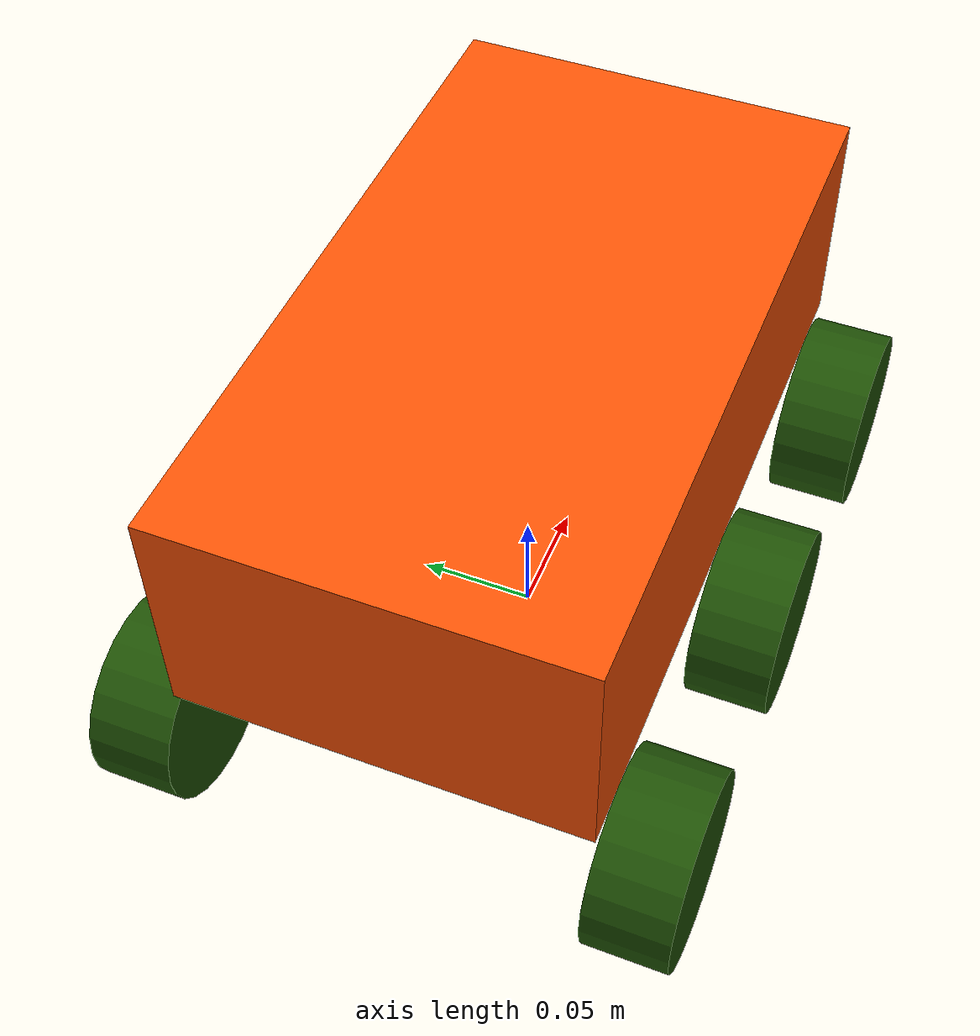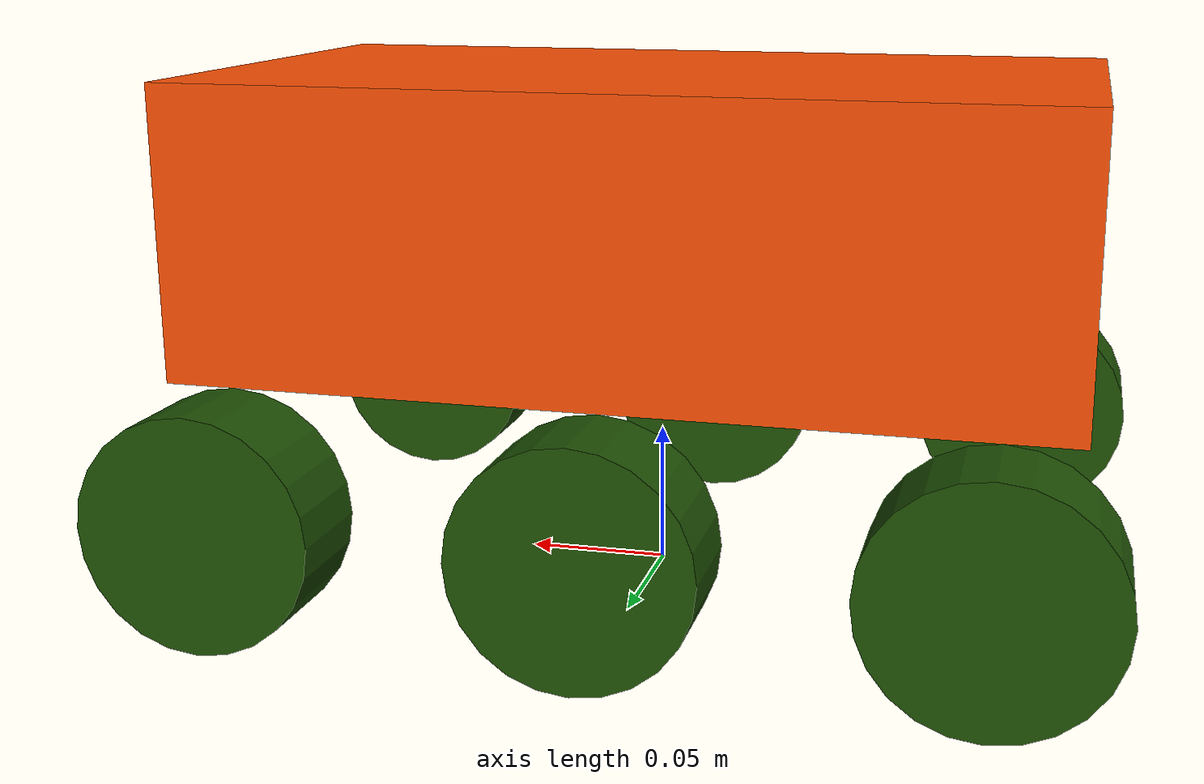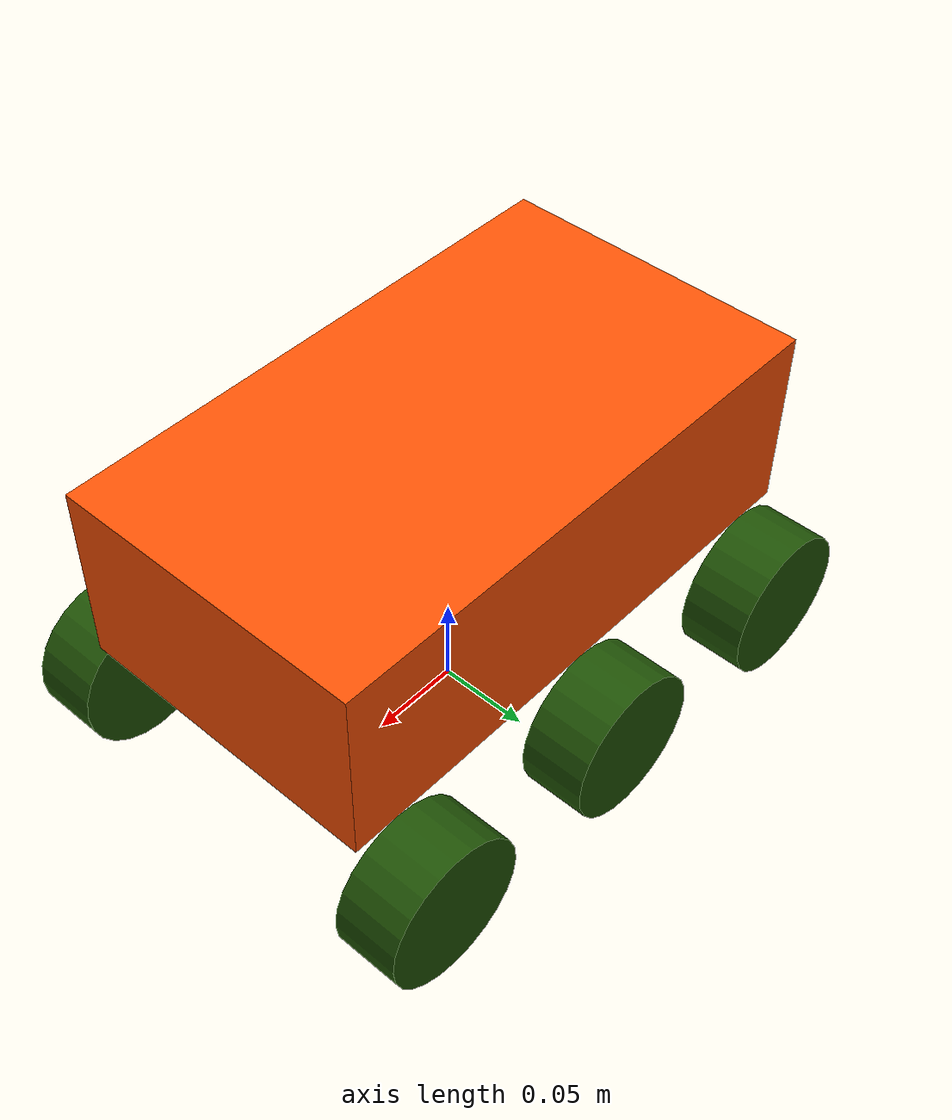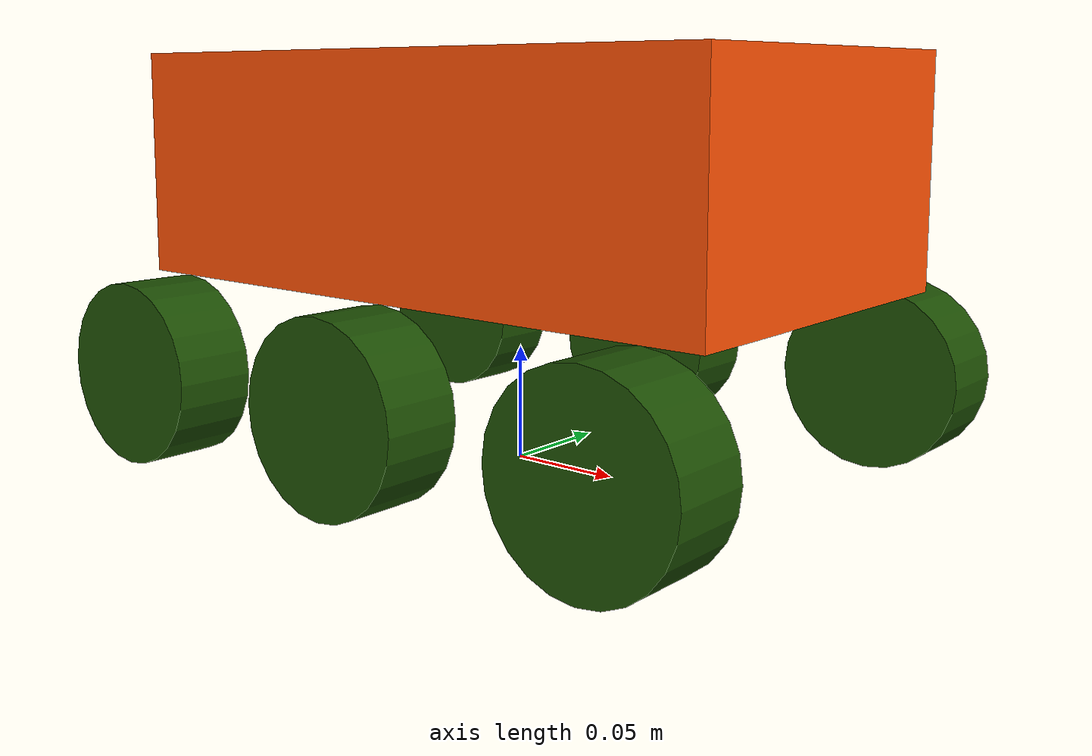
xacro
<?xml version="1.0"?>
<robot xmlns:xacro="http://www.ros.org/wiki/xacro">

  <xacro:include filename="inertial_macros.xacro"/>

  <!-- Approximate Waveshare UGV dimensions, in metres -->
  <xacro:property name="chassis_length" value="0.30"/>
  <xacro:property name="chassis_width" value="0.17"/>
  <xacro:property name="chassis_height" value="0.10"/>
  <xacro:property name="chassis_mass" value="3.0"/>

  <xacro:property name="wheel_radius" value="0.04"/>
  <xacro:property name="wheel_thickness" value="0.035"/>
  <xacro:property name="wheel_mass" value="0.15"/>

  <!-- Wheel centers: x = +0.125, 0, -0.125; y = +/- 0.085 -->
  <xacro:property name="wheel_x_front" value="0.125"/>
  <xacro:property name="wheel_x_middle" value="0.0"/>
  <xacro:property name="wheel_x_rear" value="-0.125"/>
  <xacro:property name="wheel_y" value="0.1025"/>

  <!-- Materials -->
  <material name="chassis_orange">
    <color rgba="1.0 0.32 0.02 1"/>
  </material>

  <material name="wheel_black">
    <color rgba="0.12 0.32 0.02 1"/>
  </material>

  <!-- Base frames -->
  <link name="base_link"/>

  <link name="base_footprint"/>

  <joint name="base_footprint_joint" type="fixed">
    <parent link="base_footprint"/>
    <child link="base_link"/>
    <origin xyz="0 0 0.065" rpy="0 0 0"/>
  </joint>

  <!-- Chassis -->
  <link name="chassis">
    <visual>
      <origin xyz="0 0 0.065" rpy="0 0 0"/>
      <geometry>
        <box size="${chassis_length} ${chassis_width} ${chassis_height}"/>
      </geometry>
      <material name="chassis_orange"/>
    </visual>

    <collision>
      <origin xyz="0 0 0.065" rpy="0 0 0"/>
      <geometry>
        <box size="${chassis_length} ${chassis_width} ${chassis_height}"/>
      </geometry>
    </collision>

    <xacro:inertial_box
      mass="${chassis_mass}"
      x="${chassis_length}"
      y="${chassis_width}"
      z="${chassis_height}">
      <origin xyz="0 0 0.065" rpy="0 0 0"/>
    </xacro:inertial_box>
  </link>

  <joint name="chassis_joint" type="fixed">
    <parent link="base_link"/>
    <child link="chassis"/>
    <origin xyz="0 0 0" rpy="0 0 0"/>
  </joint>

  <gazebo reference="chassis">
    <material>Gazebo/Orange</material>
  </gazebo>

  <!-- Reusable wheel macro.
       Wheel cylinder axis is oriented along the axle (Y).
       Every wheel has its own unique link and joint. -->
  <xacro:macro name="ugv_wheel" params="name x y side">
    <joint name="${name}_joint" type="continuous">
      <parent link="base_link"/>
      <child link="${name}"/>
      <origin xyz="${x} ${y} -0.025" rpy="${pi/2} 0 0"/>
      <axis xyz="0 0 1"/>
    </joint>

    <link name="${name}">
      <visual>
        <geometry>
          <cylinder radius="${wheel_radius}" length="${wheel_thickness}"/>
        </geometry>
        <material name="wheel_black"/>
      </visual>

      <collision>
        <geometry>
          <cylinder radius="${wheel_radius}" length="${wheel_thickness}"/>
        </geometry>
      </collision>

      <xacro:inertial_cylinder
        mass="${wheel_mass}"
        length="${wheel_thickness}"
        radius="${wheel_radius}">
        <origin xyz="0 0 0" rpy="0 0 0"/>
      </xacro:inertial_cylinder>
    </link>

    <gazebo reference="${name}">
      <material>Gazebo/DarkGrey</material>
      <mu1 value="1.0"/>
      <mu2 value="1.0"/>
    </gazebo>
  </xacro:macro>

  <!-- Left side: front and rear driven; middle passive -->
  <xacro:ugv_wheel
    name="front_left_wheel"
    x="${wheel_x_front}" y="${wheel_y}" side="left"/>

  <xacro:ugv_wheel
    name="middle_left_wheel"
    x="${wheel_x_middle}" y="${wheel_y}" side="left"/>

  <xacro:ugv_wheel
    name="rear_left_wheel"
    x="${wheel_x_rear}" y="${wheel_y}" side="left"/>

  <!-- Right side: front and rear driven; middle passive -->
  <xacro:ugv_wheel
    name="front_right_wheel"
    x="${wheel_x_front}" y="${-wheel_y}" side="right"/>

  <xacro:ugv_wheel
    name="middle_right_wheel"
    x="${wheel_x_middle}" y="${-wheel_y}" side="right"/>

  <xacro:ugv_wheel
    name="rear_right_wheel"
    x="${wheel_x_rear}" y="${-wheel_y}" side="right"/>

</robot>
